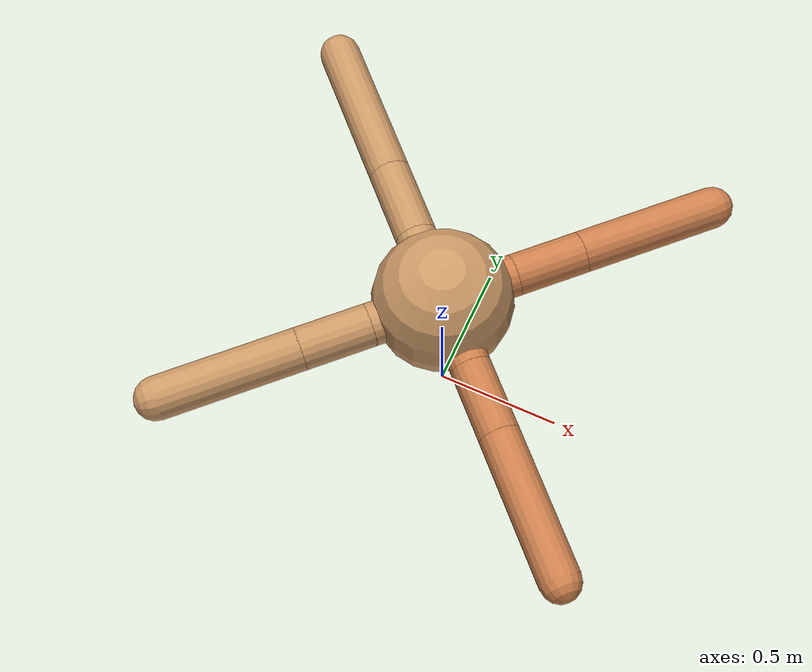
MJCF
<?xml version="1.0" ?>
<mujoco model="ant">

	<compiler angle="degree" coordinate="local" inertiafromgeom="true"/>

	<option integrator="RK4" timestep="0.01"/>

	<custom>

		<numeric data="0.0 0.0 0.55 1.0 0.0 0.0 0.0 0.0 1.0 0.0 -1.0 0.0 -1.0 0.0 1.0" name="init_qpos"/>

	</custom>

	<default>

		<joint armature="1" damping="1" limited="true"/>

		<geom conaffinity="0" condim="3" density="5.0" friction="1.5 0.1 0.1" margin="0.01" rgba="0.8 0.6 0.4 1"/>

	</default>

	<worldbody>

		<body name="torso" pos="0 0 0.75">

			<geom name="torso_geom" pos="0 0 0" size="0.2651248934973255" type="sphere"/>

			<!--joint armature="0" damping="0" limited="false" margin="0.01" name="root" pos="0 0 0" type="free"/-->

			<body name="front_left_leg" pos="0 0 0">

				<geom fromto="0 0 0 0.2 0.2 0" name="aux_1_geom" size="0.07902036944451832" type="capsule" rgba=".8 .5 .3 1"/>

				<body name="aux_1" pos="0.2 0.2 0">

					<joint axis="0 0 1" name="hip_1" pos="0.0 0.0 0.0" range="-40 40" type="hinge"/>

					<geom fromto="0 0 0 0.18982989931067623 0.18982989931067623 0" name="left_leg_geom" size="0.07902036944451832" type="capsule" rgba=".8 .5 .3 1"/>

					<body pos="0.18982989931067623 0.18982989931067623 0" name="front_left_foot">

						<joint axis="-1 1 0" name="ankle_1" pos="0.0 0.0 0.0" range="30 100" type="hinge"/>

						<geom fromto="0 0 0 0.37965979862135246 0.37965979862135246 0" name="left_ankle_geom" size="0.07902036944451832" type="capsule" rgba=".8 .5 .3 1"/>

					</body>

				</body>

			</body>

			<body name="front_right_leg" pos="0 0 0">

				<geom fromto="0 0 0 -0.2 0.2 0" name="aux_2_geom" size="0.07918546308935977" type="capsule"/>

				<body name="aux_2" pos="-0.2 0.2 0">

					<joint axis="0 0 1" name="hip_2" pos="0.0 0.0 0.0" range="-40 40" type="hinge"/>

					<geom fromto="0 0 0 -0.2060964443286724 0.2060964443286724 0" name="right_leg_geom" size="0.07918546308935977" type="capsule"/>

					<body pos="-0.2060964443286724 0.2060964443286724 0" name="front_right_foot">

						<joint axis="1 1 0" name="ankle_2" pos="0.0 0.0 0.0" range="-100 -30" type="hinge"/>

						<geom fromto="0 0 0 -0.4121928886573448 0.4121928886573448 0" name="right_ankle_geom" size="0.07918546308935977" type="capsule"/>

					</body>

				</body>

			</body>

			<body name="left_back_leg" pos="0 0 0">

				<geom fromto="0 0 0 -0.2 -0.2 0" name="aux_3_geom" size="0.08146930377568713" type="capsule"/>

				<body name="aux_3" pos="-0.2 -0.2 0">

					<joint axis="0 0 1" name="hip_3" pos="0.0 0.0 0.0" range="-40 40" type="hinge"/>

					<geom fromto="0 0 0 -0.18955731631395945 -0.18955731631395945 0" name="back_leg_geom" size="0.08146930377568713" type="capsule"/>

					<body pos="-0.18955731631395945 -0.18955731631395945 0" name="left_back_foot">

						<joint axis="-1 1 0" name="ankle_3" pos="0.0 0.0 0.0" range="-100 -30" type="hinge"/>

						<geom fromto="0 0 0 -0.3791146326279189 -0.3791146326279189 0" name="third_ankle_geom" size="0.08146930377568713" type="capsule"/>

					</body>

				</body>

			</body>

			<body name="right_back_leg" pos="0 0 0">

				<geom fromto="0 0 0 0.2 -0.2 0" name="aux_4_geom" size="0.07630956851225826" type="capsule" rgba=".8 .5 .3 1"/>

				<body name="aux_4" pos="0.2 -0.2 0">

					<joint axis="0 0 1" name="hip_4" pos="0.0 0.0 0.0" range="-40 40" type="hinge"/>

					<geom fromto="0 0 0 0.1954490357998204 -0.1954490357998204 0" name="rightback_leg_geom" size="0.07630956851225826" type="capsule" rgba=".8 .5 .3 1"/>

					<body pos="0.1954490357998204 -0.1954490357998204 0" name="right_back_foot">

						<joint axis="1 1 0" name="ankle_4" pos="0.0 0.0 0.0" range="30 100" type="hinge"/>

						<geom fromto="0 0 0 0.3908980715996408 -0.3908980715996408 0" name="fourth_ankle_geom" size="0.07630956851225826" type="capsule" rgba=".8 .5 .3 1"/>

					</body>

				</body>

			</body>

		</body>

	</worldbody>

	<actuator>

		<motor ctrllimited="true" ctrlrange="-1.0 1.0" joint="hip_4" gear="150"/>

		<motor ctrllimited="true" ctrlrange="-1.0 1.0" joint="ankle_4" gear="150"/>

		<motor ctrllimited="true" ctrlrange="-1.0 1.0" joint="hip_1" gear="150"/>

		<motor ctrllimited="true" ctrlrange="-1.0 1.0" joint="ankle_1" gear="150"/>

		<motor ctrllimited="true" ctrlrange="-1.0 1.0" joint="hip_2" gear="150"/>

		<motor ctrllimited="true" ctrlrange="-1.0 1.0" joint="ankle_2" gear="150"/>

		<motor ctrllimited="true" ctrlrange="-1.0 1.0" joint="hip_3" gear="150"/>

		<motor ctrllimited="true" ctrlrange="-1.0 1.0" joint="ankle_3" gear="150"/>

	</actuator>

</mujoco>
